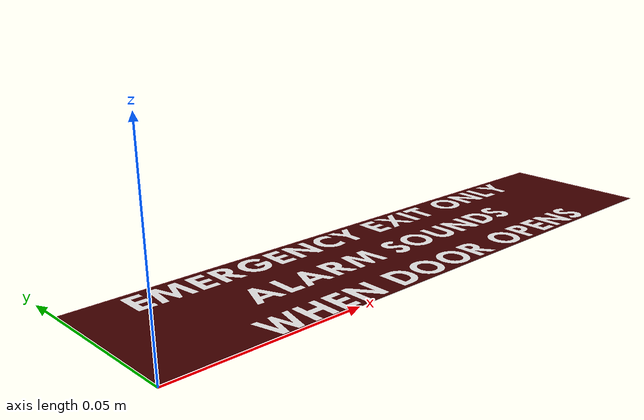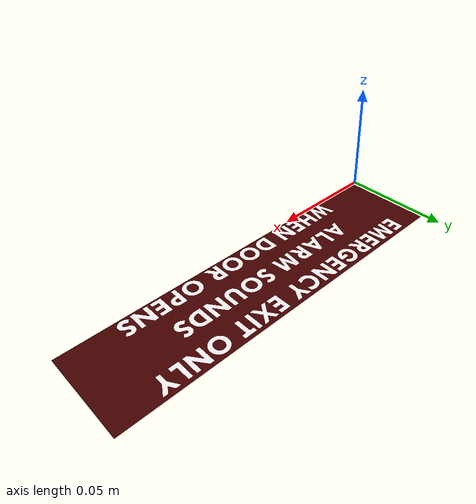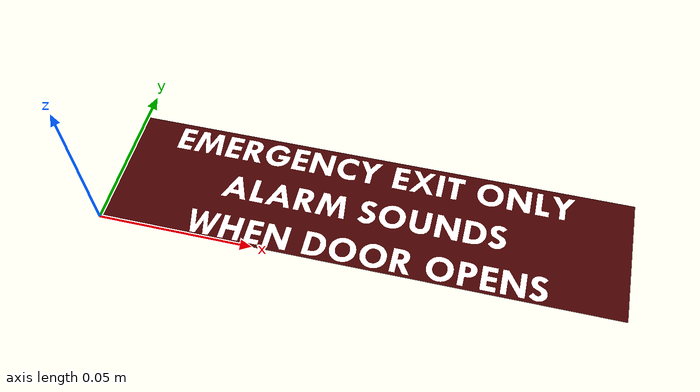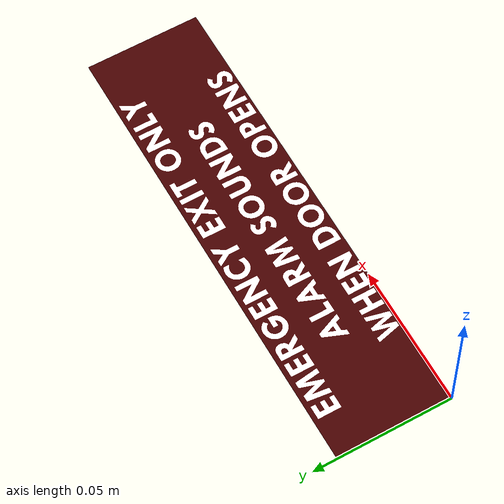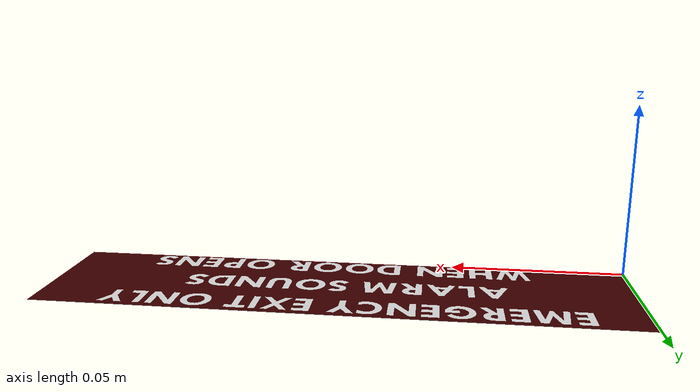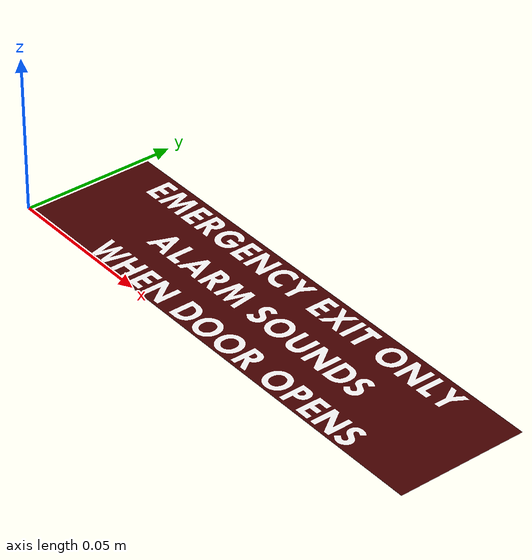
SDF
<?xml version="1.0" ?>
<sdf version="1.5">
  <model name="emergency_exit_sign">
    <static>true</static>
    <link name="emergency_exit_sign_link">
        <collision name="emergency_exit_sign_collision">
         <geometry>
            <mesh>
                <uri>model://emergency_exit_sign/meshes/model.dae</uri>
                <scale>0.5 0.5 0.5</scale>
            </mesh>
        </geometry>
      </collision>

      <visual name="emergency_exit_sign_mesh">
        <cast_shadows>false</cast_shadows>
        <geometry>
            <mesh>
                <uri>model://emergency_exit_sign/meshes/model.dae</uri>
                <scale>0.5 0.5 0.5</scale>
            </mesh>
        </geometry>
      </visual>
    </link>
  </model>
</sdf>
